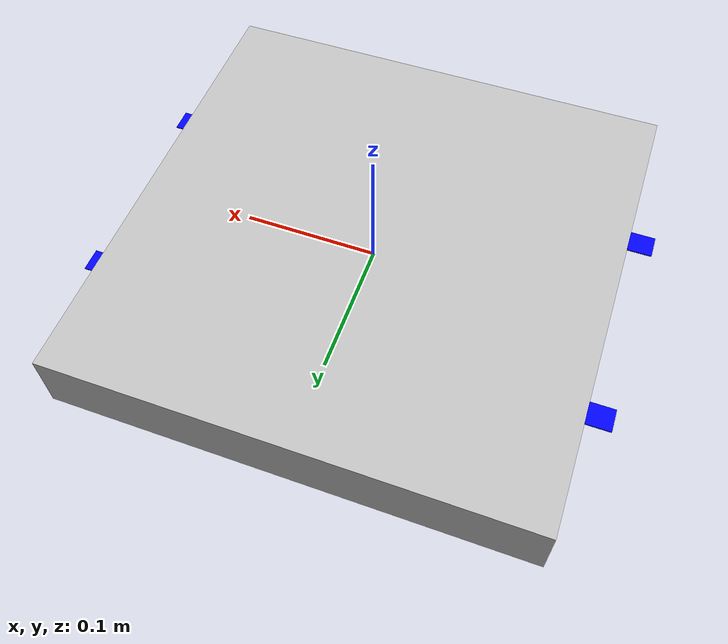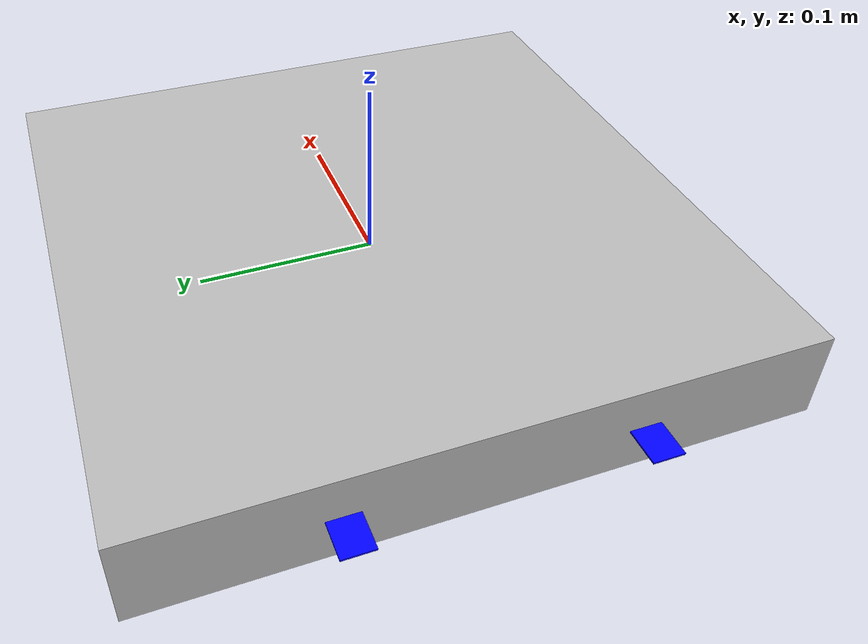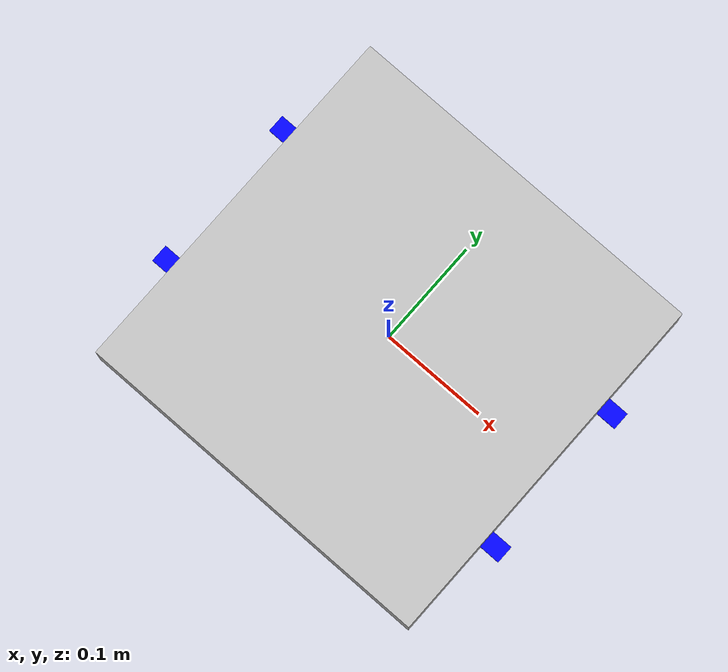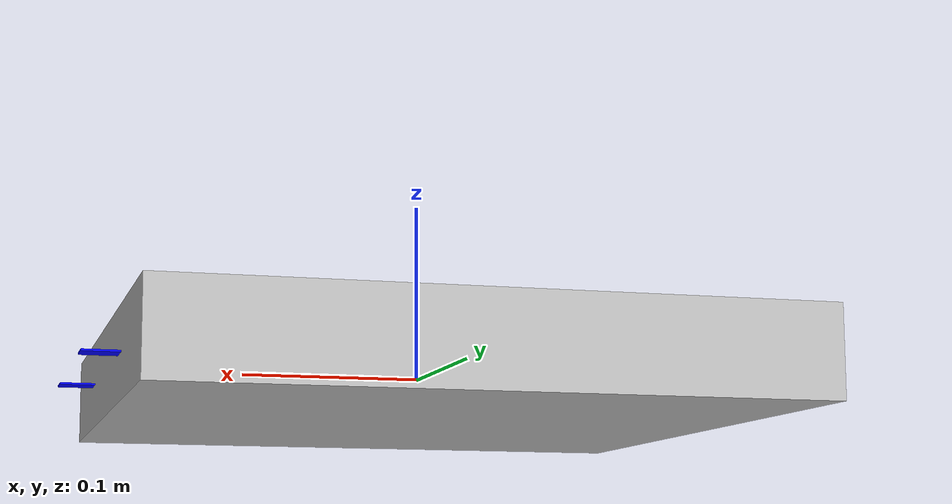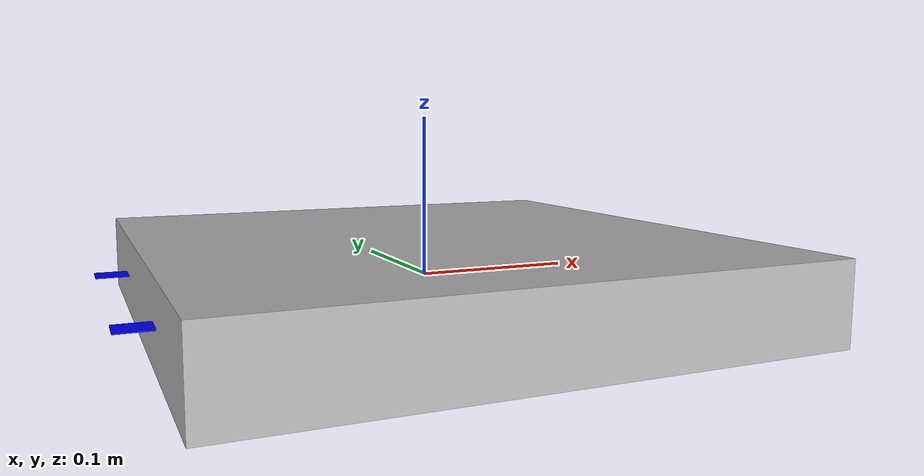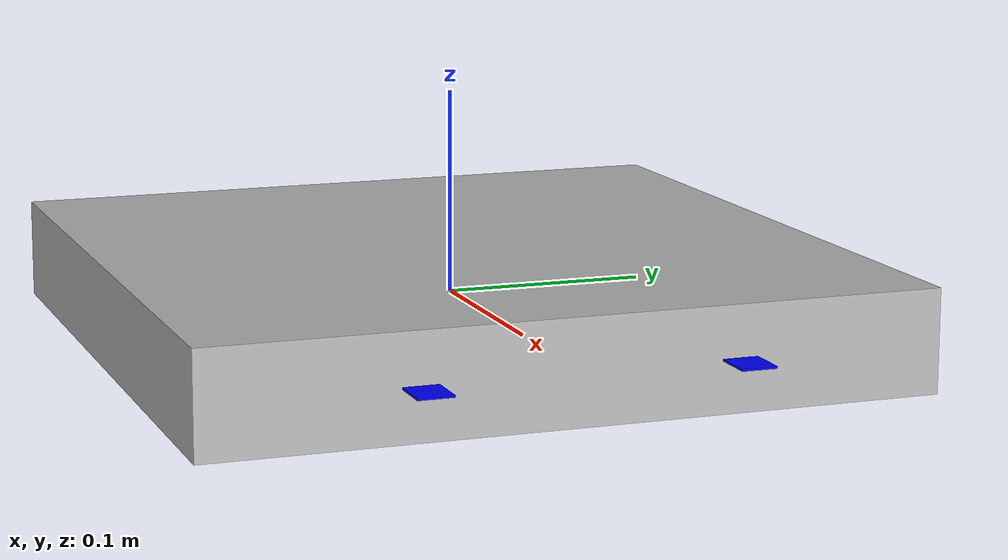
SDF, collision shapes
<?xml version="1.0" encoding="UTF-8"?>
<sdf version='1.9'>
  <model name='my_quad'>
    <pose>0 0 0 0 0 0</pose>
    <self_collide>false</self_collide>
    <static>false</static>

    <!-- ===== BASE LINK ===== -->
    <link name="base_link">
      <gravity>true</gravity>
      <velocity_decay />

      <!-- *** REPLACE mass and inertia with your CAD values (Tools > Mass Properties) *** -->
      <inertial>
        <mass>0.8</mass>
        <inertia>
          <ixx>0.004</ixx>
          <ixy>0</ixy>
          <ixz>0</ixz>
          <iyy>0.004</iyy>
          <iyz>0</iyz>
          <izz>0.007</izz>
        </inertia>
      </inertial>

      <!-- Visual mesh: full frame body -->
      <visual name="base_link_visual">
        <pose>0 0 0.10 0 0 0</pose>
        <geometry>
          <mesh>
            <scale>1 1 1</scale>
            <uri>model://my_quad/meshes/fpv_quad.dae</uri>
          </mesh>
        </geometry>
      </visual>

      <!-- Collision: simple box approximation -->
      <!-- *** REPLACE size with your actual frame bounding dimensions *** -->
      <collision name="base_link_collision">
        <pose>0 0 0 0 0 0</pose>
        <geometry>
          <box>
            <size>0.35 0.35 0.05</size>
          </box>
        </geometry>
        <surface>
          <contact>
            <ode>
              <min_depth>0.001</min_depth>
              <max_vel>0</max_vel>
            </ode>
          </contact>
          <friction>
            <ode />
          </friction>
        </surface>
      </collision>

      <!-- Barometer -->
      <sensor name="air_pressure_sensor" type="air_pressure">
        <gz_frame_id>base_link</gz_frame_id>
        <always_on>1</always_on>
        <update_rate>50</update_rate>
        <air_pressure>
          <pressure>
            <noise type="gaussian">
              <mean>0</mean>
              <stddev>3</stddev>
            </noise>
          </pressure>
        </air_pressure>
      </sensor>

      <!-- Magnetometer -->
      <sensor name="magnetometer_sensor" type="magnetometer">
        <gz_frame_id>base_link</gz_frame_id>
        <always_on>1</always_on>
        <update_rate>100</update_rate>
        <magnetometer>
          <x>
            <noise type="gaussian">
              <stddev>0.0001</stddev>
            </noise>
          </x>
          <y>
            <noise type="gaussian">
              <stddev>0.0001</stddev>
            </noise>
          </y>
          <z>
            <noise type="gaussian">
              <stddev>0.0001</stddev>
            </noise>
          </z>
        </magnetometer>
      </sensor>

      <!-- IMU -->
      <sensor name="imu_sensor" type="imu">
        <gz_frame_id>base_link</gz_frame_id>
        <always_on>1</always_on>
        <update_rate>250</update_rate>
        <imu>
          <angular_velocity>
            <x>
              <noise type="gaussian">
                <mean>0.0</mean>
                <stddev>0.0008726646</stddev>
              </noise>
            </x>
            <y>
              <noise type="gaussian">
                <mean>0.0</mean>
                <stddev>0.0008726646</stddev>
              </noise>
            </y>
            <z>
              <noise type="gaussian">
                <mean>0.0</mean>
                <stddev>0.0008726646</stddev>
              </noise>
            </z>
          </angular_velocity>
          <linear_acceleration>
            <x>
              <noise type="gaussian">
                <mean>0.0</mean>
                <stddev>0.00637</stddev>
              </noise>
            </x>
            <y>
              <noise type="gaussian">
                <mean>0.0</mean>
                <stddev>0.00637</stddev>
              </noise>
            </y>
            <z>
              <noise type="gaussian">
                <mean>0.0</mean>
                <stddev>0.00686</stddev>
              </noise>
            </z>
          </linear_acceleration>
        </imu>
      </sensor>

      <!-- GPS -->
      <sensor name="navsat_sensor" type="navsat">
        <gz_frame_id>base_link</gz_frame_id>
        <always_on>1</always_on>
        <update_rate>30</update_rate>
      </sensor>

    </link>

    <!-- ===== ROTORS ===== -->
    <!-- Motor positions verified from airframe config: X=0.13, Y=0.22 -->
    <!-- *** REPLACE pose XY/Z with your verified CAD measurements if different *** -->

    <!-- Motor 0: Front-Right (CCW) -->
    <link name="rotor_0">
      <gravity>true</gravity>
      <self_collide>false</self_collide>
      <velocity_decay />
      <pose>0.075 0.075 0 0 0 0</pose>
      <inertial>
        <mass>0.006076923076923075</mass>
        <inertia>
          <ixx>3.8464910483993325e-07</ixx>
          <iyy>2.6115851691700804e-05</iyy>
          <izz>2.649858234714004e-05</izz>
        </inertia>
      </inertial>

      <visual name="rotor_0_visual">
        <geometry>
          <mesh>
            <scale>1 1 1</scale>
            <uri>model://my_quad/meshes/propeller_ccw.dae</uri>
          </mesh>
        </geometry>
        <material>
          <ambient> 0 0 1 1</ambient>
          <diffuse>0 0 1 1</diffuse>
          <specular>0 0 0.5 1</specular>
        </material>
      </visual>
      <collision name="rotor_0_collision">
        <pose>0 0 0 0 0 0</pose>
        <geometry>
          <box>
            <size>0.24 0.017 0.001</size>
          </box>
        </geometry>
        <surface>
          <contact>
            <ode>
              <min_depth>0.001</min_depth>
              <max_vel>0</max_vel>
            </ode>
          </contact>
          <friction>
            <ode />
          </friction>
        </surface>
      </collision>
    </link>

    <joint name="rotor_0_joint" type="revolute">
      <parent>base_link</parent>
      <child>rotor_0</child>
      <axis>
        <xyz>0 0 1</xyz>
        <limit>
          <lower>-1e+16</lower>
          <upper>1e+16</upper>
        </limit>
        <dynamics>
          <spring_reference>0</spring_reference>
          <spring_stiffness>0</spring_stiffness>
        </dynamics>
      </axis>
    </joint>

    <!-- Motor 1: Back-Left (CCW) -->
    <link name="rotor_1">
      <gravity>true</gravity>
      <self_collide>false</self_collide>
      <velocity_decay />
      <pose>-0.075 -0.075 0 0 0 0</pose>
      <inertial>
        <mass>0.006076923076923075</mass>
        <inertia>
          <ixx>3.8464910483993325e-07</ixx>
          <iyy>2.6115851691700804e-05</iyy>
          <izz>2.649858234714004e-05</izz>
        </inertia>
      </inertial>
      <visual name="rotor_1_visual">

        <geometry>
          <mesh>
            <scale>1 1 1</scale>
            <uri>model://my_quad/meshes/propeller_ccw.dae</uri>
          </mesh>
        </geometry>
        <material>
          <ambient> 0 0 1 1</ambient>
          <diffuse>0 0 1 1</diffuse>
          <specular>0 0 0.5 1</specular>
        </material>

      </visual>
      <collision name="rotor_1_collision">
        <pose>0 0 0 0 0 0</pose>
        <geometry>
          <box>
            <size>0.24 0.017 0.001</size>
          </box>
        </geometry>

        <surface>
          <contact>
            <ode>
              <min_depth>0.001</min_depth>
              <max_vel>0</max_vel>
            </ode>
          </contact>
          <friction>
            <ode />
          </friction>
        </surface>
      </collision>
    </link>

    <joint name="rotor_1_joint" type="revolute">
      <parent>base_link</parent>
      <child>rotor_1</child>
      <axis>
        <xyz>0 0 1</xyz>
        <limit>
          <lower>-1e+16</lower>
          <upper>1e+16</upper>
        </limit>
        <dynamics>
          <spring_reference>0</spring_reference>
          <spring_stiffness>0</spring_stiffness>
        </dynamics>
      </axis>
    </joint>

    <!-- Motor 2: Front-Left (CW) -->
    <link name="rotor_2">
      <gravity>true</gravity>
      <self_collide>false</self_collide>
      <velocity_decay />
      <pose>0.075 -0.075 0 0 0 0</pose>
      <inertial>
        <mass>0.006076923076923075</mass>
        <inertia>
          <ixx>3.8464910483993325e-07</ixx>
          <iyy>2.6115851691700804e-05</iyy>
          <izz>2.649858234714004e-05</izz>
        </inertia>
      </inertial>
      <visual name="rotor_2_visual">

        <geometry>
          <mesh>
            <scale>1 1 1</scale>
            <uri>model://my_quad/meshes/propeller_cw.dae</uri>
          </mesh>
        </geometry>
        <material>
          <ambient> 0 0 1 1</ambient>
          <diffuse>0 0 1 1</diffuse>
          <specular>0 0 0.5 1</specular>
        </material>
      </visual>
      <collision name="rotor_2_collision">
        <pose>0 0 0 0 0 0</pose>
        <geometry>
          <box>
            <size>0.24 0.017 0.001</size>
          </box>
        </geometry>
        <surface>
          <contact>
            <ode>
              <min_depth>0.001</min_depth>
              <max_vel>0</max_vel>
            </ode>
          </contact>
          <friction>
            <ode />
          </friction>
        </surface>
      </collision>
    </link>

    <joint name="rotor_2_joint" type="revolute">
      <parent>base_link</parent>
      <child>rotor_2</child>
      <axis>
        <xyz>0 0 1</xyz>
        <limit>
          <lower>-1e+16</lower>
          <upper>1e+16</upper>
        </limit>
        <dynamics>
          <spring_reference>0</spring_reference>
          <spring_stiffness>0</spring_stiffness>
        </dynamics>
      </axis>
    </joint>

    <!-- Motor 3: Back-Right (CW) -->
    <link name="rotor_3">
      <gravity>true</gravity>
      <self_collide>false</self_collide>
      <velocity_decay />
      <pose>-0.075 0.075 0 0 0 0</pose>
      <inertial>
        <mass>0.006076923076923075</mass>
        <inertia>
          <ixx>3.8464910483993325e-07</ixx>
          <iyy>2.6115851691700804e-05</iyy>
          <izz>2.649858234714004e-05</izz>
        </inertia>
      </inertial>
      <visual name="rotor_3_visual">

        <geometry>
          <mesh>
            <scale>1 1 1</scale>
            <uri>model://my_quad/meshes/propeller_cw.dae</uri>
          </mesh>
        </geometry>
        <material>
          <ambient> 0 0 1 1</ambient>
          <diffuse>0 0 1 1</diffuse>
          <specular>0 0 0.5 1</specular>
        </material>
      </visual>
      <collision name="rotor_3_collision">
        <pose>0 0 0 0 0 0</pose>
        <geometry>
          <box>
            <size>0.24 0.017 0.001</size>
          </box>
        </geometry>
        <surface>
          <contact>
            <ode>
              <min_depth>0.001</min_depth>
              <max_vel>0</max_vel>
            </ode>
          </contact>
          <friction>
            <ode />
          </friction>
        </surface>
      </collision>
    </link>

    <joint name="rotor_3_joint" type="revolute">
      <parent>base_link</parent>
      <child>rotor_3</child>
      <axis>
        <xyz>0 0 1</xyz>
        <limit>
          <lower>-1e+16</lower>
          <upper>1e+16</upper>
        </limit>
        <dynamics>
          <spring_reference>0</spring_reference>
          <spring_stiffness>0</spring_stiffness>
        </dynamics>
      </axis>
    </joint>

    <!-- ===== PLUGINS ===== -->
    <!-- NOTE: Sensor system plugins (Imu, Magnetometer, AirPressure, NavSat)
         are loaded globally via server.config — do NOT add them here. -->

    <!-- Motor 0: Front-Right (CCW) -->
    <plugin filename="gz-sim-multicopter-motor-model-system"
            name="gz::sim::systems::MulticopterMotorModel">
      <jointName>rotor_0_joint</jointName>
      <linkName>rotor_0</linkName>
      <turningDirection>ccw</turningDirection>
      <timeConstantUp>0.025</timeConstantUp>
      <timeConstantDown>0.05</timeConstantDown>
      <maxRotVelocity>2618.0</maxRotVelocity>
      <motorConstant>1.269e-05</motorConstant>
      <momentConstant>0.002</momentConstant>
      <commandSubTopic>command/motor_speed</commandSubTopic>
      <motorNumber>0</motorNumber>
      <rotorDragCoefficient>1.0e-05</rotorDragCoefficient>
      <rollingMomentCoefficient>1e-06</rollingMomentCoefficient>
      <rotorVelocitySlowdownSim>10</rotorVelocitySlowdownSim>
      <motorType>velocity</motorType>
    </plugin>

    <!-- Motor 1: Back-Left (CCW) -->
    <plugin filename="gz-sim-multicopter-motor-model-system"
            name="gz::sim::systems::MulticopterMotorModel">
      <jointName>rotor_1_joint</jointName>
      <linkName>rotor_1</linkName>
      <turningDirection>ccw</turningDirection>
      <timeConstantUp>0.025</timeConstantUp>
      <timeConstantDown>0.05</timeConstantDown>
      <maxRotVelocity>2618.0</maxRotVelocity>
      <motorConstant>1.269e-05</motorConstant>
      <momentConstant>0.002</momentConstant>
      <commandSubTopic>command/motor_speed</commandSubTopic>
      <motorNumber>1</motorNumber>
      <rotorDragCoefficient>1.0e-05</rotorDragCoefficient>
      <rollingMomentCoefficient>1e-06</rollingMomentCoefficient>
      <rotorVelocitySlowdownSim>10</rotorVelocitySlowdownSim>
      <motorType>velocity</motorType>
    </plugin>

    <!-- Motor 2: Front-Left (CW) -->
    <plugin filename="gz-sim-multicopter-motor-model-system"
            name="gz::sim::systems::MulticopterMotorModel">
      <jointName>rotor_2_joint</jointName>
      <linkName>rotor_2</linkName>
      <turningDirection>cw</turningDirection>
      <timeConstantUp>0.025</timeConstantUp>
      <timeConstantDown>0.05</timeConstantDown>
      <maxRotVelocity>2618.0</maxRotVelocity>
      <motorConstant>1.269e-05</motorConstant>
      <momentConstant>0.002</momentConstant>
      <commandSubTopic>command/motor_speed</commandSubTopic>
      <motorNumber>2</motorNumber>
      <rotorDragCoefficient>1.0e-05</rotorDragCoefficient>
      <rollingMomentCoefficient>1e-06</rollingMomentCoefficient>
      <rotorVelocitySlowdownSim>10</rotorVelocitySlowdownSim>
      <motorType>velocity</motorType>
    </plugin>

    <!-- Motor 3: Back-Right (CW) -->
    <plugin filename="gz-sim-multicopter-motor-model-system"
            name="gz::sim::systems::MulticopterMotorModel">
      <jointName>rotor_3_joint</jointName>
      <linkName>rotor_3</linkName>
      <turningDirection>cw</turningDirection>
      <timeConstantUp>0.025</timeConstantUp>
      <timeConstantDown>0.05</timeConstantDown>
      <maxRotVelocity>2618.0</maxRotVelocity>
      <motorConstant>1.269e-05</motorConstant>
      <momentConstant>0.002</momentConstant>
      <commandSubTopic>command/motor_speed</commandSubTopic>
      <motorNumber>3</motorNumber>
      <rotorDragCoefficient>1.0e-05</rotorDragCoefficient>
      <rollingMomentCoefficient>1e-06</rollingMomentCoefficient>
      <rotorVelocitySlowdownSim>10</rotorVelocitySlowdownSim>
      <motorType>velocity</motorType>
    </plugin>

  </model>
</sdf>
